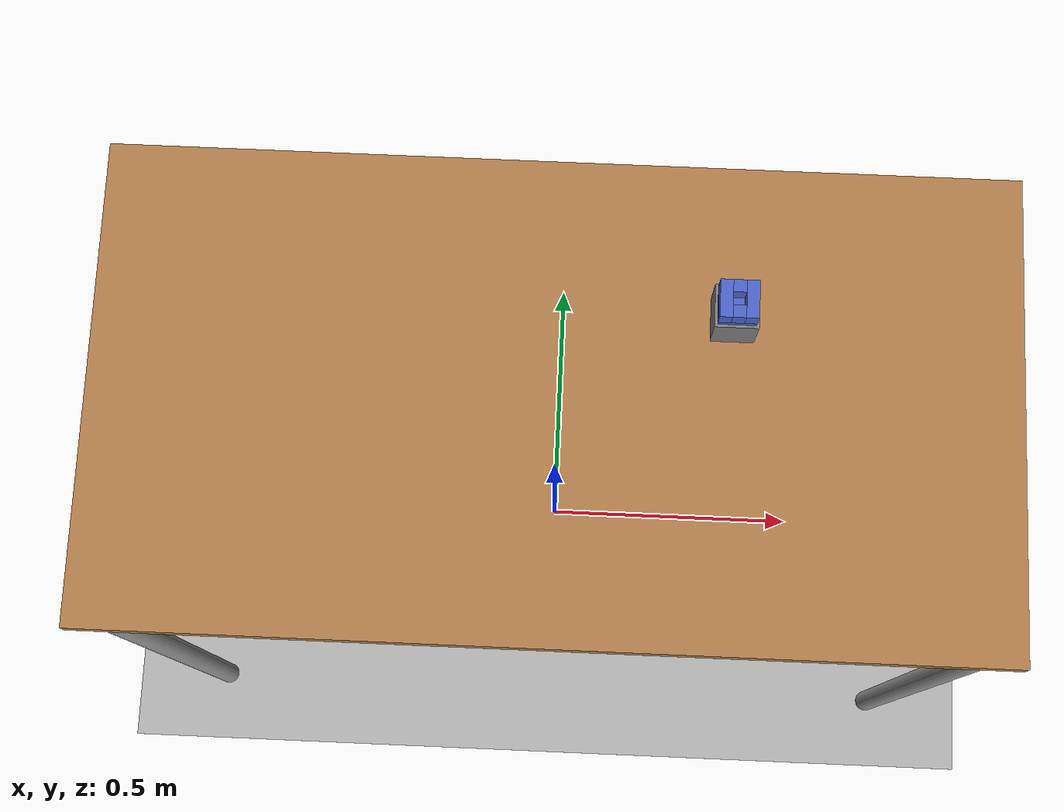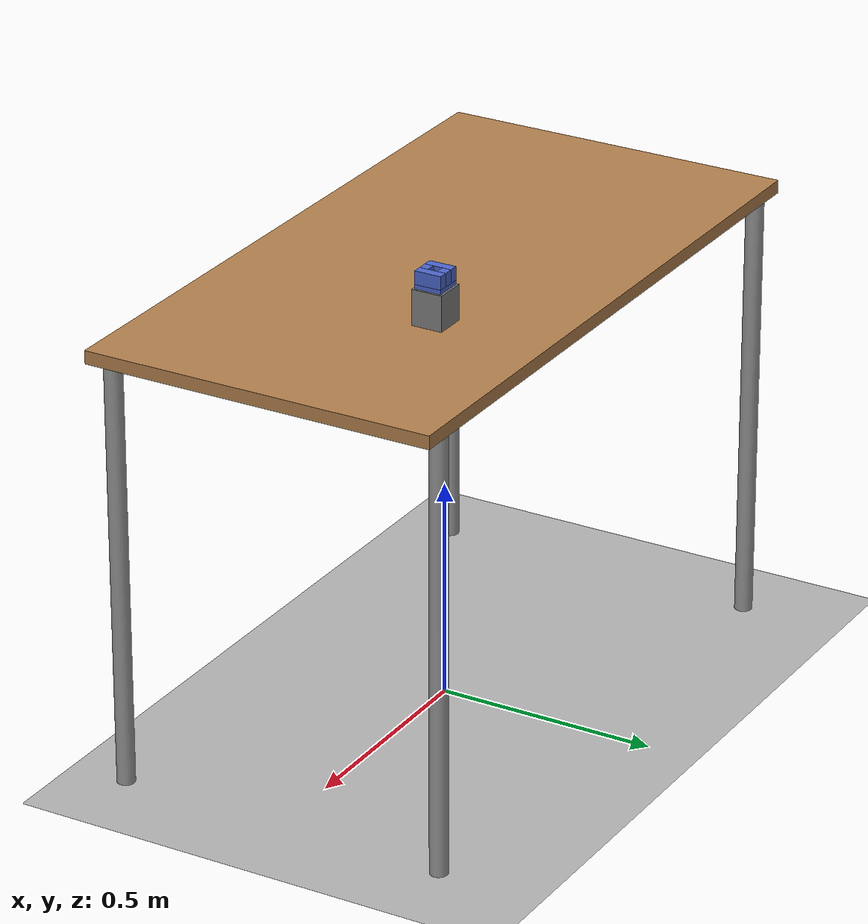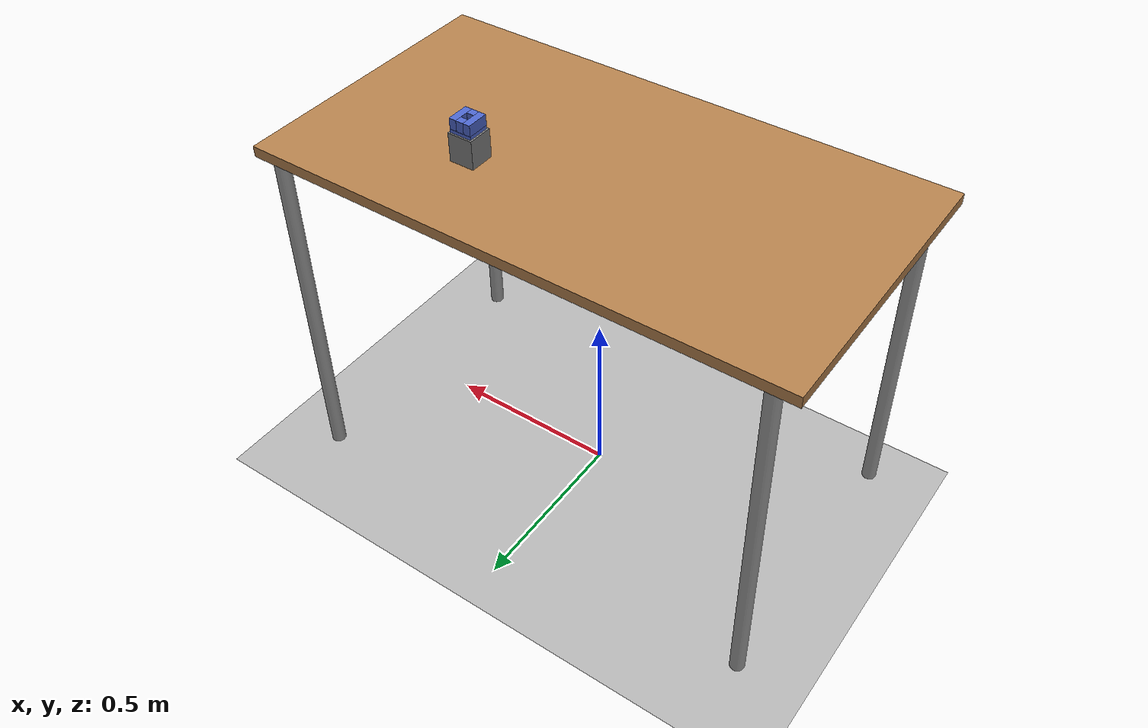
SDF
<?xml version="1.0" ?>
<sdf version="1.8">
  <world name="default">
    <physics name="default_physics" type="bullet">
      <max_step_size>0.001</max_step_size>
      <real_time_factor>1</real_time_factor>
    </physics>
    <plugin filename="gz-sim-physics-system" name="gz::sim::systems::Physics"/>
    <plugin filename="gz-sim-user-commands-system" name="gz::sim::systems::UserCommands"/>
    <plugin filename="gz-sim-scene-broadcaster-system" name="gz::sim::systems::SceneBroadcaster"/>
    <plugin filename="gz-sim-sensors-system" name="gz::sim::systems::Sensors">
      <render_engine>ogre2</render_engine>
    </plugin>
    <plugin filename="gz-sim-contact-system" name="gz::sim::systems::Contact"/>
    <plugin filename="gz-sim-forcetorque-system" name="gz::sim::systems::ForceTorque"/>

    <light type="directional" name="sun">
      <cast_shadows>true</cast_shadows>
      <pose>0 0 10 0 0 0</pose>
      <diffuse>0.9 0.9 0.9 1</diffuse>
      <specular>0.3 0.3 0.3 1</specular>
      <direction>-0.5 0.2 -0.9</direction>
    </light>
    <model name="ground_plane">
      <static>true</static>
      <link name="link">
        <collision name="collision"><geometry><plane><normal>0 0 1</normal><size>20 20</size></plane></geometry></collision>
        <visual name="visual"><geometry><plane><normal>0 0 1</normal><size>20 20</size></plane></geometry>
          <material><ambient>0.7 0.7 0.7 1</ambient><diffuse>0.7 0.7 0.7 1</diffuse></material></visual>
      </link>
    </model>

    <include>
      <name>mount_table</name>
      <uri>model://mount_table</uri>
      <pose>0 0 0 0 0 0</pose>
    </include>

    <model name="peg_fixture">
      <static>true</static>
      <pose>0.28 0.14 1.135 0 0 0</pose>
      <link name="link">
        <collision name="wall_px_c"><pose>0.0205 0 -0.015 0 0 0</pose><geometry><box><size>0.02 0.061 0.03</size></box></geometry>
          <surface><friction><ode><mu>0.5</mu><mu2>0.5</mu2></ode></friction></surface></collision>
        <visual name="wall_px_v"><pose>0.0205 0 -0.015 0 0 0</pose><geometry><box><size>0.02 0.061 0.03</size></box></geometry>
          <material><ambient>0.3 0.4 0.8 1</ambient><diffuse>0.3 0.4 0.8 1</diffuse></material></visual>
        <collision name="wall_nx_c"><pose>-0.0205 0 -0.015 0 0 0</pose><geometry><box><size>0.02 0.061 0.03</size></box></geometry>
          <surface><friction><ode><mu>0.5</mu><mu2>0.5</mu2></ode></friction></surface></collision>
        <visual name="wall_nx_v"><pose>-0.0205 0 -0.015 0 0 0</pose><geometry><box><size>0.02 0.061 0.03</size></box></geometry>
          <material><ambient>0.3 0.4 0.8 1</ambient><diffuse>0.3 0.4 0.8 1</diffuse></material></visual>
        <collision name="wall_py_c"><pose>0 0.0205 -0.015 0 0 0</pose><geometry><box><size>0.021 0.02 0.03</size></box></geometry>
          <surface><friction><ode><mu>0.5</mu><mu2>0.5</mu2></ode></friction></surface></collision>
        <visual name="wall_py_v"><pose>0 0.0205 -0.015 0 0 0</pose><geometry><box><size>0.021 0.02 0.03</size></box></geometry>
          <material><ambient>0.3 0.4 0.8 1</ambient><diffuse>0.3 0.4 0.8 1</diffuse></material></visual>
        <collision name="wall_ny_c"><pose>0 -0.0205 -0.015 0 0 0</pose><geometry><box><size>0.021 0.02 0.03</size></box></geometry>
          <surface><friction><ode><mu>0.5</mu><mu2>0.5</mu2></ode></friction></surface></collision>
        <visual name="wall_ny_v"><pose>0 -0.0205 -0.015 0 0 0</pose><geometry><box><size>0.021 0.02 0.03</size></box></geometry>
          <material><ambient>0.3 0.4 0.8 1</ambient><diffuse>0.3 0.4 0.8 1</diffuse></material></visual>
        <collision name="hole_floor_c"><pose>0 0 -0.034999999999999996 0 0 0</pose><geometry><box><size>0.061 0.061 0.01</size></box></geometry>
          <surface><friction><ode><mu>0.5</mu><mu2>0.5</mu2></ode></friction></surface></collision>
        <visual name="hole_floor_v"><pose>0 0 -0.034999999999999996 0 0 0</pose><geometry><box><size>0.061 0.061 0.01</size></box></geometry>
          <material><ambient>0.3 0.4 0.8 1</ambient><diffuse>0.3 0.4 0.8 1</diffuse></material></visual>
        <collision name="pedestal_c"><pose>0 0 -0.08 0 0 0</pose><geometry><box><size>0.07 0.07 0.08</size></box></geometry>
          <surface><friction><ode><mu>0.5</mu><mu2>0.5</mu2></ode></friction></surface></collision>
        <visual name="pedestal_v"><pose>0 0 -0.08 0 0 0</pose><geometry><box><size>0.07 0.07 0.08</size></box></geometry>
          <material><ambient>0.5 0.5 0.5 1</ambient><diffuse>0.5 0.5 0.5 1</diffuse></material></visual>
      </link>
    </model>

    <model name="peg_cam">
      <static>true</static>
      <pose>0.65 -0.25 1.465 0 0.531 2.33</pose>
      <link name="link">
        <sensor name="peg_cam" type="camera">
          <always_on>0</always_on>
          <update_rate>15</update_rate>
          <topic>peg_cam/image</topic>
          <camera>
            <horizontal_fov>0.9</horizontal_fov>
            <image><width>960</width><height>540</height><format>R8G8B8</format></image>
            <clip><near>0.05</near><far>8</far></clip>
          </camera>
        </sensor>
      </link>
    </model>
    <model name="peg_close">
      <static>true</static>
      <pose>0.40 0.02 1.215 0 0.44 2.356</pose>
      <link name="link">
        <sensor name="peg_close" type="camera">
          <always_on>0</always_on>
          <update_rate>15</update_rate>
          <topic>peg_close/image</topic>
          <camera>
            <horizontal_fov>0.8</horizontal_fov>
            <image><width>960</width><height>540</height><format>R8G8B8</format></image>
            <clip><near>0.05</near><far>8</far></clip>
          </camera>
        </sensor>
      </link>
    </model>
  </world>
</sdf>

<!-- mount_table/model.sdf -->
<sdf version="1.5">
    <model name="mount_table">
        <static>true</static>
        <link name="link">
            <collision name="surface">
                <pose>0 0 1.0 0 0 0</pose>
                <geometry>
                    <box>
                        <size>1.5 0.8 0.03</size>
                    </box>
                </geometry>
                <surface>
                    <friction>
                        <ode>
                            <mu>0.6</mu>
                            <mu2>0.6</mu2>
                        </ode>
                    </friction>
                </surface>
            </collision>
            <visual name="visual1">
                <pose>0 0 1.0 0 0 0</pose>
                <geometry>
                    <box>
                        <size>1.5 0.8 0.03</size>
                    </box>
                </geometry>
                <material>
                    <diffuse>1.0 1.0 1.0</diffuse>
                    <script>
                        <uri>file://media/materials/scripts/gazebo.material</uri>
                        <name>Gazebo/Wood</name>
                    </script>
                    <!-- PBR for Ignition, material scripts for gazebo classic-->
                    <pbr>
                        <metal>
                            <albedo_map>model://mount_table/Table_Diffuse.jpg</albedo_map>
                        </metal>
                    </pbr>
                </material>
            </visual>
            <collision name="front_left_leg">
                <pose>0.68 0.38 0.5 0 0 0</pose>
                <geometry>
                    <cylinder>
                        <radius>0.02</radius>
                        <length>1.0</length>
                    </cylinder>
                </geometry>
            </collision>
            <visual name="front_left_leg">
                <pose>0.68 0.38 0.5 0 0 0</pose>
                <geometry>
                    <cylinder>
                        <radius>0.02</radius>
                        <length>1.0</length>
                    </cylinder>
                </geometry>
                <material>
                    <diffuse>0.5 0.5 0.5</diffuse>
                    <script>
                        <uri>file://media/materials/scripts/gazebo.material</uri>
                        <name>Gazebo/Grey</name>
                    </script>
                </material>
            </visual>
            <collision name="front_right_leg">
                <pose>0.68 -0.38 0.5 0 0 0</pose>
                <geometry>
                    <cylinder>
                        <radius>0.02</radius>
                        <length>1.0</length>
                    </cylinder>
                </geometry>
            </collision>
            <visual name="front_right_leg">
                <pose>0.68 -0.38 0.5 0 0 0</pose>
                <geometry>
                    <cylinder>
                        <radius>0.02</radius>
                        <length>1.0</length>
                    </cylinder>
                </geometry>
                <material>
                    <diffuse>0.5 0.5 0.5</diffuse>
                    <script>
                        <uri>file://media/materials/scripts/gazebo.material</uri>
                        <name>Gazebo/Grey</name>
                    </script>
                </material>
            </visual>
            <collision name="back_right_leg">
                <pose>-0.68 -0.38 0.5 0 0 0</pose>
                <geometry>
                    <cylinder>
                        <radius>0.02</radius>
                        <length>1.0</length>
                    </cylinder>
                </geometry>
            </collision>
            <visual name="back_right_leg">
                <pose>-0.68 -0.38 0.5 0 0 0</pose>
                <geometry>
                    <cylinder>
                        <radius>0.02</radius>
                        <length>1.0</length>
                    </cylinder>
                </geometry>
                <material>
                    <diffuse>0.5 0.5 0.5</diffuse>
                    <script>
                        <uri>file://media/materials/scripts/gazebo.material</uri>
                        <name>Gazebo/Grey</name>
                    </script>
                </material>
            </visual>
            <collision name="back_left_leg">
                <pose>-0.68 0.38 0.5 0 0 0</pose>
                <geometry>
                    <cylinder>
                        <radius>0.02</radius>
                        <length>1.0</length>
                    </cylinder>
                </geometry>
            </collision>
            <visual name="back_left_leg">
                <pose>-0.68 0.38 0.5 0 0 0</pose>
                <geometry>
                    <cylinder>
                        <radius>0.02</radius>
                        <length>1.0</length>
                    </cylinder>
                </geometry>
                <material>
                    <diffuse>0.5 0.5 0.5</diffuse>
                    <script>
                        <uri>file://media/materials/scripts/gazebo.material</uri>
                        <name>Gazebo/Grey</name>
                    </script>
                </material>
            </visual>
        </link>
    </model>
</sdf>
